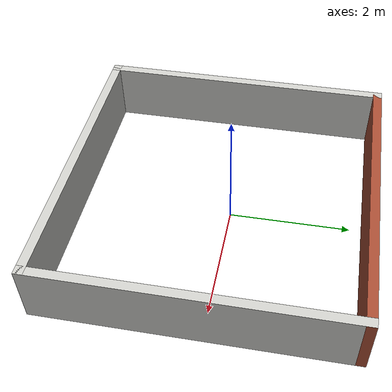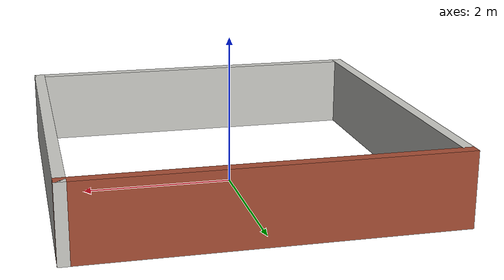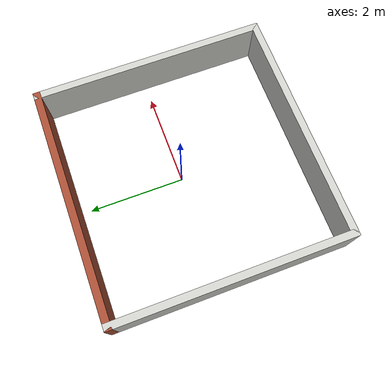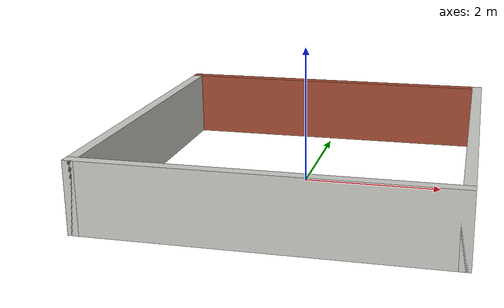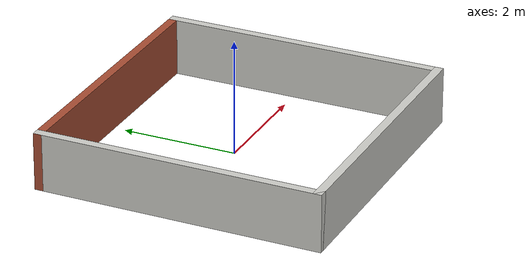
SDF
<?xml version='1.0'?>
<sdf version='1.6'>
  <model name='walls(5*5)'>
    <pose frame=''>-0.004 -0.155 0 0 -0 0</pose>
    <link name='Wall_25'>
      <collision name='Wall_25_Collision'>
        <geometry>
          <box>
            <size>5 0.15 1</size>
          </box>
        </geometry>
        <pose frame=''>0 0 0.5 0 -0 0</pose>
      </collision>
      <visual name='Wall_25_Visual'>
        <pose frame=''>0 0 0.5 0 -0 0</pose>
        <geometry>
          <box>
            <size>5 0.15 1</size>
          </box>
        </geometry>
        <material>
          <script>
            <uri>file://media/materials/scripts/gazebo.material</uri>
            <name>Gazebo/CeilingTiled</name>
          </script>
          <ambient>0.760784 0.662745 0.627451 1</ambient>
        </material>
        <meta>
          <layer>0</layer>
        </meta>
      </visual>
      <pose frame=''>-0 -2.425 0 0 -0 0</pose>
    </link>
    <link name='Wall_27'>
      <collision name='Wall_27_Collision'>
        <geometry>
          <box>
            <size>5 0.15 1</size>
          </box>
        </geometry>
        <pose frame=''>0 0 0.5 0 -0 0</pose>
      </collision>
      <visual name='Wall_27_Visual'>
        <pose frame=''>0 0 0.5 0 -0 0</pose>
        <geometry>
          <box>
            <size>5 0.15 1</size>
          </box>
        </geometry>
        <material>
          <script>
            <uri>file://media/materials/scripts/gazebo.material</uri>
            <name>Gazebo/CeilingTiled</name>
          </script>
          <ambient>0.760784 0.662745 0.627451 1</ambient>
        </material>
        <meta>
          <layer>0</layer>
        </meta>
      </visual>
      <pose frame=''>2.425 -0 0 0 -0 1.5708</pose>
    </link>
    <link name='Wall_28'>
      <collision name='Wall_28_Collision'>
        <geometry>
          <box>
            <size>5 0.15 1</size>
          </box>
        </geometry>
        <pose frame=''>0 0 0.5 0 -0 0</pose>
      </collision>
      <visual name='Wall_28_Visual'>
        <pose frame=''>0 0 0.5 0 -0 0</pose>
        <geometry>
          <box>
            <size>5 0.15 1</size>
          </box>
        </geometry>
        <material>
          <script>
            <uri>file://media/materials/scripts/gazebo.material</uri>
            <name>Gazebo/Bricks</name>
          </script>
          <ambient>1 1 1 1</ambient>
        </material>
        <meta>
          <layer>0</layer>
        </meta>
      </visual>
      <pose frame=''>-0 2.425 0 0 -0 3.14159</pose>
    </link>
    <link name='Wall_29'>
      <collision name='Wall_29_Collision'>
        <geometry>
          <box>
            <size>5 0.15 1</size>
          </box>
        </geometry>
        <pose frame=''>0 0 0.5 0 -0 0</pose>
      </collision>
      <visual name='Wall_29_Visual'>
        <pose frame=''>0 0 0.5 0 -0 0</pose>
        <geometry>
          <box>
            <size>5 0.15 1</size>
          </box>
        </geometry>
        <material>
          <script>
            <uri>file://media/materials/scripts/gazebo.material</uri>
            <name>Gazebo/CeilingTiled</name>
          </script>
          <ambient>0.760784 0.662745 0.627451 1</ambient>
        </material>
        <meta>
          <layer>0</layer>
        </meta>
      </visual>
      <pose frame=''>-2.425 -0 0 0 -0 -1.5708</pose>
    </link>
    <static>1</static>
  </model>
</sdf>
